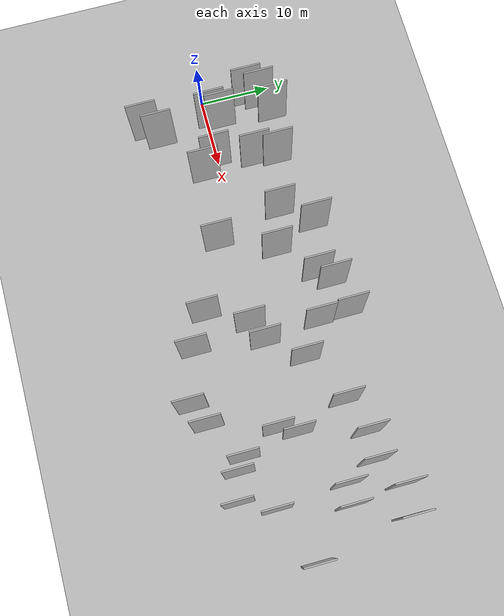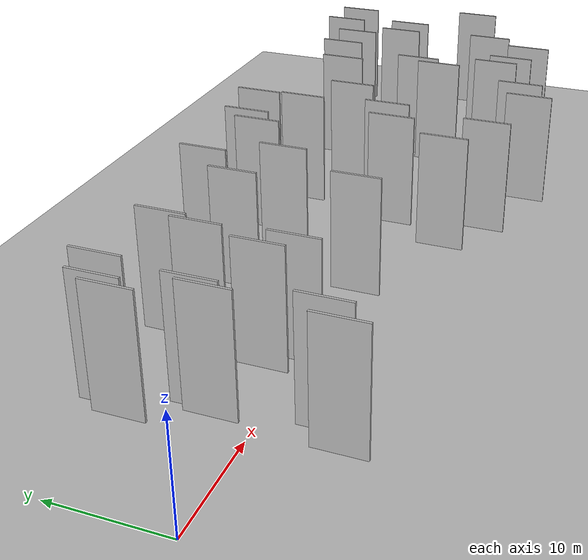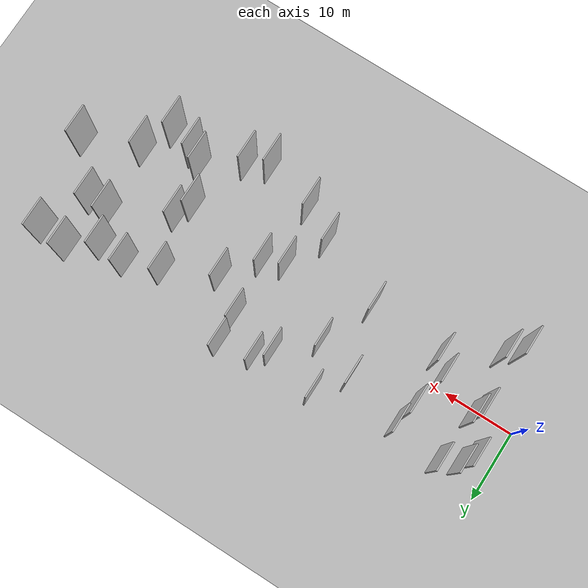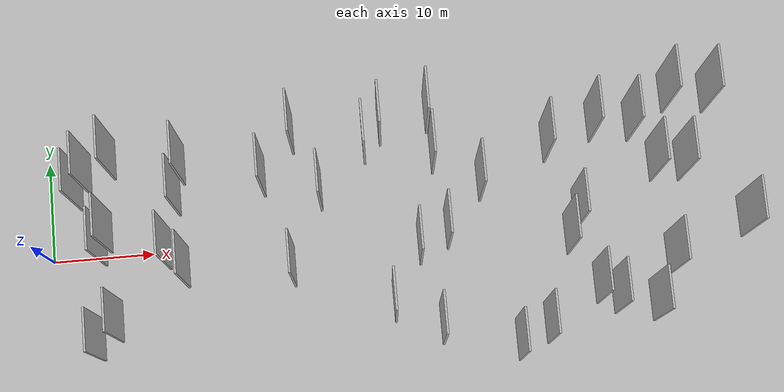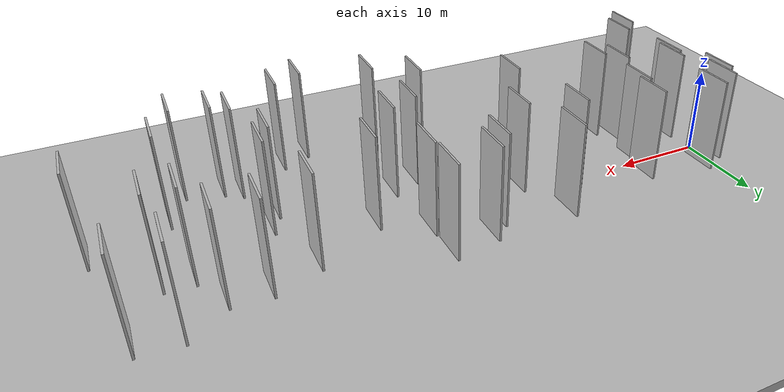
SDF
<?xml version="1.0" encoding="utf-8"?>

<sdf version="1.6">

   <world name="default">

      <gui fullscreen="0">

         <camera name="user_camera">

            <pose>-15 0 4.57585 0 0 0</pose>

            <view_controller>orbit</view_controller>

         </camera>

      </gui>

      <scene>

         <sky>

           <clouds>

             <speed>12</speed>

           </clouds>

         </sky>

         <ambient>0.4 0.4 0.4 1</ambient>

         <background>0.7 0.7 0.7 1</background>

         <shadows>1</shadows>

      </scene>

      <gravity>0 0 -9.8066</gravity>

      <magnetic_field>6e-06 2.3e-05 -4.2e-05</magnetic_field>

      <physics default="0" name="default_physics" type="ode">

         <ode>

            <solver>

               <type>quick</type>

               <iters>10</iters>

               <sor>1.0</sor>

               <use_dynamic_moi_rescaling>0</use_dynamic_moi_rescaling>

            </solver>

            <constraints>

               <cfm>0</cfm>

               <erp>0.2</erp>

               <contact_max_correcting_vel>100</contact_max_correcting_vel>

               <contact_surface_layer>0.001</contact_surface_layer>

            </constraints>

         </ode>

         <max_step_size>0.004</max_step_size>

         <real_time_factor>1</real_time_factor>

         <real_time_update_rate>250</real_time_update_rate>

      </physics>

      <light name="sun" type="directional">

         <cast_shadows>1</cast_shadows>

         <pose>0 0 10 0 0 0</pose>

         <diffuse>0.8 0.8 0.8 1</diffuse>

         <specular>0.2 0.2 0.2 1</specular>

         <attenuation>

            <range>1000</range>

            <constant>0.9</constant>

            <linear>0.01</linear>

            <quadratic>0.001</quadratic>

         </attenuation>

         <direction>-0.5 0.1 -0.9</direction>

      </light>

      <include>

         <name>ground_plane_1</name>

         <uri>model://HANNAS_ground_plane</uri>

         <pose>0 0 0  0 0 0</pose>

      </include>

      <include>

         <name>ground_plane_2</name>

         <uri>model://HANNAS_ground_plane</uri>

         <pose>100 0 0  0 0 0</pose>

      </include>

      <model name="HANNAS_wall_1">

         <static>1</static>

         <pose frame="">61.8722 4.0476 5.0 0.000000 0.000000 1.570796</pose>

         <link name="link">

            <pose frame="">0 0 5.00 0 0 0</pose>

            <collision name="collision">

               <geometry>

                  <box>

                     <size>4.00 0.2 10.00</size>

                  </box>

               </geometry>

               <max_contacts>10</max_contacts>

               <surface>

                  <contact>

                     <ode/>

                  </contact>

                  <bounce/>

                  <friction>

                     <torsional>

                        <ode/>

                     </torsional>

                     <ode/>

                  </friction>

               </surface>

            </collision>

            <visual name="visual">

               <cast_shadows>0</cast_shadows>

               <geometry>

                  <box>

                     <size>4.00 0.2 10.00</size>

                  </box>

               </geometry>

               <material>

                  <script>

                     <uri>model://HANNAS_wall/materials/scripts</uri>

                     <uri>model://HANNAS_wall/materials/textures</uri>

                     <name>vrc/HANNAS_wall</name>

                  </script>

               </material>

            </visual>

            <self_collide>0</self_collide>

            <enable_wind>0</enable_wind>

            <kinematic>0</kinematic>

         </link>

      </model>

      <model name="HANNAS_wall_2">

         <static>1</static>

         <pose frame="">24.0952 -3.1645 5.0 0.000000 0.000000 1.570796</pose>

         <link name="link">

            <pose frame="">0 0 5.00 0 0 0</pose>

            <collision name="collision">

               <geometry>

                  <box>

                     <size>4.00 0.2 10.00</size>

                  </box>

               </geometry>

               <max_contacts>10</max_contacts>

               <surface>

                  <contact>

                     <ode/>

                  </contact>

                  <bounce/>

                  <friction>

                     <torsional>

                        <ode/>

                     </torsional>

                     <ode/>

                  </friction>

               </surface>

            </collision>

            <visual name="visual">

               <cast_shadows>0</cast_shadows>

               <geometry>

                  <box>

                     <size>4.00 0.2 10.00</size>

                  </box>

               </geometry>

               <material>

                  <script>

                     <uri>model://HANNAS_wall/materials/scripts</uri>

                     <uri>model://HANNAS_wall/materials/textures</uri>

                     <name>vrc/HANNAS_wall</name>

                  </script>

               </material>

            </visual>

            <self_collide>0</self_collide>

            <enable_wind>0</enable_wind>

            <kinematic>0</kinematic>

         </link>

      </model>

      <model name="HANNAS_wall_3">

         <static>1</static>

         <pose frame="">33.2724 9.9596 5.0 0.000000 0.000000 1.570796</pose>

         <link name="link">

            <pose frame="">0 0 5.00 0 0 0</pose>

            <collision name="collision">

               <geometry>

                  <box>

                     <size>4.00 0.2 10.00</size>

                  </box>

               </geometry>

               <max_contacts>10</max_contacts>

               <surface>

                  <contact>

                     <ode/>

                  </contact>

                  <bounce/>

                  <friction>

                     <torsional>

                        <ode/>

                     </torsional>

                     <ode/>

                  </friction>

               </surface>

            </collision>

            <visual name="visual">

               <cast_shadows>0</cast_shadows>

               <geometry>

                  <box>

                     <size>4.00 0.2 10.00</size>

                  </box>

               </geometry>

               <material>

                  <script>

                     <uri>model://HANNAS_wall/materials/scripts</uri>

                     <uri>model://HANNAS_wall/materials/textures</uri>

                     <name>vrc/HANNAS_wall</name>

                  </script>

               </material>

            </visual>

            <self_collide>0</self_collide>

            <enable_wind>0</enable_wind>

            <kinematic>0</kinematic>

         </link>

      </model>

      <model name="HANNAS_wall_4">

         <static>1</static>

         <pose frame="">49.0473 6.9587 5.0 0.000000 0.000000 1.570796</pose>

         <link name="link">

            <pose frame="">0 0 5.00 0 0 0</pose>

            <collision name="collision">

               <geometry>

                  <box>

                     <size>4.00 0.2 10.00</size>

                  </box>

               </geometry>

               <max_contacts>10</max_contacts>

               <surface>

                  <contact>

                     <ode/>

                  </contact>

                  <bounce/>

                  <friction>

                     <torsional>

                        <ode/>

                     </torsional>

                     <ode/>

                  </friction>

               </surface>

            </collision>

            <visual name="visual">

               <cast_shadows>0</cast_shadows>

               <geometry>

                  <box>

                     <size>4.00 0.2 10.00</size>

                  </box>

               </geometry>

               <material>

                  <script>

                     <uri>model://HANNAS_wall/materials/scripts</uri>

                     <uri>model://HANNAS_wall/materials/textures</uri>

                     <name>vrc/HANNAS_wall</name>

                  </script>

               </material>

            </visual>

            <self_collide>0</self_collide>

            <enable_wind>0</enable_wind>

            <kinematic>0</kinematic>

         </link>

      </model>

      <model name="HANNAS_wall_5">

         <static>1</static>

         <pose frame="">47.6376 -10.6316 5.0 0.000000 0.000000 1.570796</pose>

         <link name="link">

            <pose frame="">0 0 5.00 0 0 0</pose>

            <collision name="collision">

               <geometry>

                  <box>

                     <size>4.00 0.2 10.00</size>

                  </box>

               </geometry>

               <max_contacts>10</max_contacts>

               <surface>

                  <contact>

                     <ode/>

                  </contact>

                  <bounce/>

                  <friction>

                     <torsional>

                        <ode/>

                     </torsional>

                     <ode/>

                  </friction>

               </surface>

            </collision>

            <visual name="visual">

               <cast_shadows>0</cast_shadows>

               <geometry>

                  <box>

                     <size>4.00 0.2 10.00</size>

                  </box>

               </geometry>

               <material>

                  <script>

                     <uri>model://HANNAS_wall/materials/scripts</uri>

                     <uri>model://HANNAS_wall/materials/textures</uri>

                     <name>vrc/HANNAS_wall</name>

                  </script>

               </material>

            </visual>

            <self_collide>0</self_collide>

            <enable_wind>0</enable_wind>

            <kinematic>0</kinematic>

         </link>

      </model>

      <model name="HANNAS_wall_6">

         <static>1</static>

         <pose frame="">7.3256 -7.0540 5.0 0.000000 0.000000 1.570796</pose>

         <link name="link">

            <pose frame="">0 0 5.00 0 0 0</pose>

            <collision name="collision">

               <geometry>

                  <box>

                     <size>4.00 0.2 10.00</size>

                  </box>

               </geometry>

               <max_contacts>10</max_contacts>

               <surface>

                  <contact>

                     <ode/>

                  </contact>

                  <bounce/>

                  <friction>

                     <torsional>

                        <ode/>

                     </torsional>

                     <ode/>

                  </friction>

               </surface>

            </collision>

            <visual name="visual">

               <cast_shadows>0</cast_shadows>

               <geometry>

                  <box>

                     <size>4.00 0.2 10.00</size>

                  </box>

               </geometry>

               <material>

                  <script>

                     <uri>model://HANNAS_wall/materials/scripts</uri>

                     <uri>model://HANNAS_wall/materials/textures</uri>

                     <name>vrc/HANNAS_wall</name>

                  </script>

               </material>

            </visual>

            <self_collide>0</self_collide>

            <enable_wind>0</enable_wind>

            <kinematic>0</kinematic>

         </link>

      </model>

      <model name="HANNAS_wall_7">

         <static>1</static>

         <pose frame="">37.7008 -9.8740 5.0 0.000000 0.000000 1.570796</pose>

         <link name="link">

            <pose frame="">0 0 5.00 0 0 0</pose>

            <collision name="collision">

               <geometry>

                  <box>

                     <size>4.00 0.2 10.00</size>

                  </box>

               </geometry>

               <max_contacts>10</max_contacts>

               <surface>

                  <contact>

                     <ode/>

                  </contact>

                  <bounce/>

                  <friction>

                     <torsional>

                        <ode/>

                     </torsional>

                     <ode/>

                  </friction>

               </surface>

            </collision>

            <visual name="visual">

               <cast_shadows>0</cast_shadows>

               <geometry>

                  <box>

                     <size>4.00 0.2 10.00</size>

                  </box>

               </geometry>

               <material>

                  <script>

                     <uri>model://HANNAS_wall/materials/scripts</uri>

                     <uri>model://HANNAS_wall/materials/textures</uri>

                     <name>vrc/HANNAS_wall</name>

                  </script>

               </material>

            </visual>

            <self_collide>0</self_collide>

            <enable_wind>0</enable_wind>

            <kinematic>0</kinematic>

         </link>

      </model>

      <model name="HANNAS_wall_8">

         <static>1</static>

         <pose frame="">42.4209 3.6427 5.0 0.000000 0.000000 1.570796</pose>

         <link name="link">

            <pose frame="">0 0 5.00 0 0 0</pose>

            <collision name="collision">

               <geometry>

                  <box>

                     <size>4.00 0.2 10.00</size>

                  </box>

               </geometry>

               <max_contacts>10</max_contacts>

               <surface>

                  <contact>

                     <ode/>

                  </contact>

                  <bounce/>

                  <friction>

                     <torsional>

                        <ode/>

                     </torsional>

                     <ode/>

                  </friction>

               </surface>

            </collision>

            <visual name="visual">

               <cast_shadows>0</cast_shadows>

               <geometry>

                  <box>

                     <size>4.00 0.2 10.00</size>

                  </box>

               </geometry>

               <material>

                  <script>

                     <uri>model://HANNAS_wall/materials/scripts</uri>

                     <uri>model://HANNAS_wall/materials/textures</uri>

                     <name>vrc/HANNAS_wall</name>

                  </script>

               </material>

            </visual>

            <self_collide>0</self_collide>

            <enable_wind>0</enable_wind>

            <kinematic>0</kinematic>

         </link>

      </model>

      <model name="HANNAS_wall_9">

         <static>1</static>

         <pose frame="">27.1511 4.0003 5.0 0.000000 0.000000 1.570796</pose>

         <link name="link">

            <pose frame="">0 0 5.00 0 0 0</pose>

            <collision name="collision">

               <geometry>

                  <box>

                     <size>4.00 0.2 10.00</size>

                  </box>

               </geometry>

               <max_contacts>10</max_contacts>

               <surface>

                  <contact>

                     <ode/>

                  </contact>

                  <bounce/>

                  <friction>

                     <torsional>

                        <ode/>

                     </torsional>

                     <ode/>

                  </friction>

               </surface>

            </collision>

            <visual name="visual">

               <cast_shadows>0</cast_shadows>

               <geometry>

                  <box>

                     <size>4.00 0.2 10.00</size>

                  </box>

               </geometry>

               <material>

                  <script>

                     <uri>model://HANNAS_wall/materials/scripts</uri>

                     <uri>model://HANNAS_wall/materials/textures</uri>

                     <name>vrc/HANNAS_wall</name>

                  </script>

               </material>

            </visual>

            <self_collide>0</self_collide>

            <enable_wind>0</enable_wind>

            <kinematic>0</kinematic>

         </link>

      </model>

      <model name="HANNAS_wall_10">

         <static>1</static>

         <pose frame="">31.6519 8.2826 5.0 0.000000 0.000000 1.570796</pose>

         <link name="link">

            <pose frame="">0 0 5.00 0 0 0</pose>

            <collision name="collision">

               <geometry>

                  <box>

                     <size>4.00 0.2 10.00</size>

                  </box>

               </geometry>

               <max_contacts>10</max_contacts>

               <surface>

                  <contact>

                     <ode/>

                  </contact>

                  <bounce/>

                  <friction>

                     <torsional>

                        <ode/>

                     </torsional>

                     <ode/>

                  </friction>

               </surface>

            </collision>

            <visual name="visual">

               <cast_shadows>0</cast_shadows>

               <geometry>

                  <box>

                     <size>4.00 0.2 10.00</size>

                  </box>

               </geometry>

               <material>

                  <script>

                     <uri>model://HANNAS_wall/materials/scripts</uri>

                     <uri>model://HANNAS_wall/materials/textures</uri>

                     <name>vrc/HANNAS_wall</name>

                  </script>

               </material>

            </visual>

            <self_collide>0</self_collide>

            <enable_wind>0</enable_wind>

            <kinematic>0</kinematic>

         </link>

      </model>

      <model name="HANNAS_wall_11">

         <static>1</static>

         <pose frame="">4.0250 6.0023 5.0 0.000000 0.000000 1.570796</pose>

         <link name="link">

            <pose frame="">0 0 5.00 0 0 0</pose>

            <collision name="collision">

               <geometry>

                  <box>

                     <size>4.00 0.2 10.00</size>

                  </box>

               </geometry>

               <max_contacts>10</max_contacts>

               <surface>

                  <contact>

                     <ode/>

                  </contact>

                  <bounce/>

                  <friction>

                     <torsional>

                        <ode/>

                     </torsional>

                     <ode/>

                  </friction>

               </surface>

            </collision>

            <visual name="visual">

               <cast_shadows>0</cast_shadows>

               <geometry>

                  <box>

                     <size>4.00 0.2 10.00</size>

                  </box>

               </geometry>

               <material>

                  <script>

                     <uri>model://HANNAS_wall/materials/scripts</uri>

                     <uri>model://HANNAS_wall/materials/textures</uri>

                     <name>vrc/HANNAS_wall</name>

                  </script>

               </material>

            </visual>

            <self_collide>0</self_collide>

            <enable_wind>0</enable_wind>

            <kinematic>0</kinematic>

         </link>

      </model>

      <model name="HANNAS_wall_12">

         <static>1</static>

         <pose frame="">57.9385 -9.3177 5.0 0.000000 0.000000 1.570796</pose>

         <link name="link">

            <pose frame="">0 0 5.00 0 0 0</pose>

            <collision name="collision">

               <geometry>

                  <box>

                     <size>4.00 0.2 10.00</size>

                  </box>

               </geometry>

               <max_contacts>10</max_contacts>

               <surface>

                  <contact>

                     <ode/>

                  </contact>

                  <bounce/>

                  <friction>

                     <torsional>

                        <ode/>

                     </torsional>

                     <ode/>

                  </friction>

               </surface>

            </collision>

            <visual name="visual">

               <cast_shadows>0</cast_shadows>

               <geometry>

                  <box>

                     <size>4.00 0.2 10.00</size>

                  </box>

               </geometry>

               <material>

                  <script>

                     <uri>model://HANNAS_wall/materials/scripts</uri>

                     <uri>model://HANNAS_wall/materials/textures</uri>

                     <name>vrc/HANNAS_wall</name>

                  </script>

               </material>

            </visual>

            <self_collide>0</self_collide>

            <enable_wind>0</enable_wind>

            <kinematic>0</kinematic>

         </link>

      </model>

      <model name="HANNAS_wall_13">

         <static>1</static>

         <pose frame="">67.3275 -1.9392 5.0 0.000000 0.000000 1.570796</pose>

         <link name="link">

            <pose frame="">0 0 5.00 0 0 0</pose>

            <collision name="collision">

               <geometry>

                  <box>

                     <size>4.00 0.2 10.00</size>

                  </box>

               </geometry>

               <max_contacts>10</max_contacts>

               <surface>

                  <contact>

                     <ode/>

                  </contact>

                  <bounce/>

                  <friction>

                     <torsional>

                        <ode/>

                     </torsional>

                     <ode/>

                  </friction>

               </surface>

            </collision>

            <visual name="visual">

               <cast_shadows>0</cast_shadows>

               <geometry>

                  <box>

                     <size>4.00 0.2 10.00</size>

                  </box>

               </geometry>

               <material>

                  <script>

                     <uri>model://HANNAS_wall/materials/scripts</uri>

                     <uri>model://HANNAS_wall/materials/textures</uri>

                     <name>vrc/HANNAS_wall</name>

                  </script>

               </material>

            </visual>

            <self_collide>0</self_collide>

            <enable_wind>0</enable_wind>

            <kinematic>0</kinematic>

         </link>

      </model>

      <model name="HANNAS_wall_14">

         <static>1</static>

         <pose frame="">38.9414 -0.7922 5.0 0.000000 0.000000 1.570796</pose>

         <link name="link">

            <pose frame="">0 0 5.00 0 0 0</pose>

            <collision name="collision">

               <geometry>

                  <box>

                     <size>4.00 0.2 10.00</size>

                  </box>

               </geometry>

               <max_contacts>10</max_contacts>

               <surface>

                  <contact>

                     <ode/>

                  </contact>

                  <bounce/>

                  <friction>

                     <torsional>

                        <ode/>

                     </torsional>

                     <ode/>

                  </friction>

               </surface>

            </collision>

            <visual name="visual">

               <cast_shadows>0</cast_shadows>

               <geometry>

                  <box>

                     <size>4.00 0.2 10.00</size>

                  </box>

               </geometry>

               <material>

                  <script>

                     <uri>model://HANNAS_wall/materials/scripts</uri>

                     <uri>model://HANNAS_wall/materials/textures</uri>

                     <name>vrc/HANNAS_wall</name>

                  </script>

               </material>

            </visual>

            <self_collide>0</self_collide>

            <enable_wind>0</enable_wind>

            <kinematic>0</kinematic>

         </link>

      </model>

      <model name="HANNAS_wall_15">

         <static>1</static>

         <pose frame="">21.7613 5.8761 5.0 0.000000 0.000000 1.570796</pose>

         <link name="link">

            <pose frame="">0 0 5.00 0 0 0</pose>

            <collision name="collision">

               <geometry>

                  <box>

                     <size>4.00 0.2 10.00</size>

                  </box>

               </geometry>

               <max_contacts>10</max_contacts>

               <surface>

                  <contact>

                     <ode/>

                  </contact>

                  <bounce/>

                  <friction>

                     <torsional>

                        <ode/>

                     </torsional>

                     <ode/>

                  </friction>

               </surface>

            </collision>

            <visual name="visual">

               <cast_shadows>0</cast_shadows>

               <geometry>

                  <box>

                     <size>4.00 0.2 10.00</size>

                  </box>

               </geometry>

               <material>

                  <script>

                     <uri>model://HANNAS_wall/materials/scripts</uri>

                     <uri>model://HANNAS_wall/materials/textures</uri>

                     <name>vrc/HANNAS_wall</name>

                  </script>

               </material>

            </visual>

            <self_collide>0</self_collide>

            <enable_wind>0</enable_wind>

            <kinematic>0</kinematic>

         </link>

      </model>

      <model name="HANNAS_wall_16">

         <static>1</static>

         <pose frame="">6.1006 0.4176 5.0 0.000000 0.000000 1.570796</pose>

         <link name="link">

            <pose frame="">0 0 5.00 0 0 0</pose>

            <collision name="collision">

               <geometry>

                  <box>

                     <size>4.00 0.2 10.00</size>

                  </box>

               </geometry>

               <max_contacts>10</max_contacts>

               <surface>

                  <contact>

                     <ode/>

                  </contact>

                  <bounce/>

                  <friction>

                     <torsional>

                        <ode/>

                     </torsional>

                     <ode/>

                  </friction>

               </surface>

            </collision>

            <visual name="visual">

               <cast_shadows>0</cast_shadows>

               <geometry>

                  <box>

                     <size>4.00 0.2 10.00</size>

                  </box>

               </geometry>

               <material>

                  <script>

                     <uri>model://HANNAS_wall/materials/scripts</uri>

                     <uri>model://HANNAS_wall/materials/textures</uri>

                     <name>vrc/HANNAS_wall</name>

                  </script>

               </material>

            </visual>

            <self_collide>0</self_collide>

            <enable_wind>0</enable_wind>

            <kinematic>0</kinematic>

         </link>

      </model>

      <model name="HANNAS_wall_17">

         <static>1</static>

         <pose frame="">14.0295 7.7053 5.0 0.000000 0.000000 1.570796</pose>

         <link name="link">

            <pose frame="">0 0 5.00 0 0 0</pose>

            <collision name="collision">

               <geometry>

                  <box>

                     <size>4.00 0.2 10.00</size>

                  </box>

               </geometry>

               <max_contacts>10</max_contacts>

               <surface>

                  <contact>

                     <ode/>

                  </contact>

                  <bounce/>

                  <friction>

                     <torsional>

                        <ode/>

                     </torsional>

                     <ode/>

                  </friction>

               </surface>

            </collision>

            <visual name="visual">

               <cast_shadows>0</cast_shadows>

               <geometry>

                  <box>

                     <size>4.00 0.2 10.00</size>

                  </box>

               </geometry>

               <material>

                  <script>

                     <uri>model://HANNAS_wall/materials/scripts</uri>

                     <uri>model://HANNAS_wall/materials/textures</uri>

                     <name>vrc/HANNAS_wall</name>

                  </script>

               </material>

            </visual>

            <self_collide>0</self_collide>

            <enable_wind>0</enable_wind>

            <kinematic>0</kinematic>

         </link>

      </model>

      <model name="HANNAS_wall_18">

         <static>1</static>

         <pose frame="">54.3517 -8.3169 5.0 0.000000 0.000000 1.570796</pose>

         <link name="link">

            <pose frame="">0 0 5.00 0 0 0</pose>

            <collision name="collision">

               <geometry>

                  <box>

                     <size>4.00 0.2 10.00</size>

                  </box>

               </geometry>

               <max_contacts>10</max_contacts>

               <surface>

                  <contact>

                     <ode/>

                  </contact>

                  <bounce/>

                  <friction>

                     <torsional>

                        <ode/>

                     </torsional>

                     <ode/>

                  </friction>

               </surface>

            </collision>

            <visual name="visual">

               <cast_shadows>0</cast_shadows>

               <geometry>

                  <box>

                     <size>4.00 0.2 10.00</size>

                  </box>

               </geometry>

               <material>

                  <script>

                     <uri>model://HANNAS_wall/materials/scripts</uri>

                     <uri>model://HANNAS_wall/materials/textures</uri>

                     <name>vrc/HANNAS_wall</name>

                  </script>

               </material>

            </visual>

            <self_collide>0</self_collide>

            <enable_wind>0</enable_wind>

            <kinematic>0</kinematic>

         </link>

      </model>

      <model name="HANNAS_wall_19">

         <static>1</static>

         <pose frame="">59.9371 -4.9966 5.0 0.000000 0.000000 1.570796</pose>

         <link name="link">

            <pose frame="">0 0 5.00 0 0 0</pose>

            <collision name="collision">

               <geometry>

                  <box>

                     <size>4.00 0.2 10.00</size>

                  </box>

               </geometry>

               <max_contacts>10</max_contacts>

               <surface>

                  <contact>

                     <ode/>

                  </contact>

                  <bounce/>

                  <friction>

                     <torsional>

                        <ode/>

                     </torsional>

                     <ode/>

                  </friction>

               </surface>

            </collision>

            <visual name="visual">

               <cast_shadows>0</cast_shadows>

               <geometry>

                  <box>

                     <size>4.00 0.2 10.00</size>

                  </box>

               </geometry>

               <material>

                  <script>

                     <uri>model://HANNAS_wall/materials/scripts</uri>

                     <uri>model://HANNAS_wall/materials/textures</uri>

                     <name>vrc/HANNAS_wall</name>

                  </script>

               </material>

            </visual>

            <self_collide>0</self_collide>

            <enable_wind>0</enable_wind>

            <kinematic>0</kinematic>

         </link>

      </model>

      <model name="HANNAS_wall_20">

         <static>1</static>

         <pose frame="">51.4424 0.0903 5.0 0.000000 0.000000 1.570796</pose>

         <link name="link">

            <pose frame="">0 0 5.00 0 0 0</pose>

            <collision name="collision">

               <geometry>

                  <box>

                     <size>4.00 0.2 10.00</size>

                  </box>

               </geometry>

               <max_contacts>10</max_contacts>

               <surface>

                  <contact>

                     <ode/>

                  </contact>

                  <bounce/>

                  <friction>

                     <torsional>

                        <ode/>

                     </torsional>

                     <ode/>

                  </friction>

               </surface>

            </collision>

            <visual name="visual">

               <cast_shadows>0</cast_shadows>

               <geometry>

                  <box>

                     <size>4.00 0.2 10.00</size>

                  </box>

               </geometry>

               <material>

                  <script>

                     <uri>model://HANNAS_wall/materials/scripts</uri>

                     <uri>model://HANNAS_wall/materials/textures</uri>

                     <name>vrc/HANNAS_wall</name>

                  </script>

               </material>

            </visual>

            <self_collide>0</self_collide>

            <enable_wind>0</enable_wind>

            <kinematic>0</kinematic>

         </link>

      </model>

      <model name="HANNAS_wall_21">

         <static>1</static>

         <pose frame="">52.7272 -7.2309 5.0 0.000000 0.000000 1.570796</pose>

         <link name="link">

            <pose frame="">0 0 5.00 0 0 0</pose>

            <collision name="collision">

               <geometry>

                  <box>

                     <size>4.00 0.2 10.00</size>

                  </box>

               </geometry>

               <max_contacts>10</max_contacts>

               <surface>

                  <contact>

                     <ode/>

                  </contact>

                  <bounce/>

                  <friction>

                     <torsional>

                        <ode/>

                     </torsional>

                     <ode/>

                  </friction>

               </surface>

            </collision>

            <visual name="visual">

               <cast_shadows>0</cast_shadows>

               <geometry>

                  <box>

                     <size>4.00 0.2 10.00</size>

                  </box>

               </geometry>

               <material>

                  <script>

                     <uri>model://HANNAS_wall/materials/scripts</uri>

                     <uri>model://HANNAS_wall/materials/textures</uri>

                     <name>vrc/HANNAS_wall</name>

                  </script>

               </material>

            </visual>

            <self_collide>0</self_collide>

            <enable_wind>0</enable_wind>

            <kinematic>0</kinematic>

         </link>

      </model>

      <model name="HANNAS_wall_22">

         <static>1</static>

         <pose frame="">57.3311 8.3574 5.0 0.000000 0.000000 1.570796</pose>

         <link name="link">

            <pose frame="">0 0 5.00 0 0 0</pose>

            <collision name="collision">

               <geometry>

                  <box>

                     <size>4.00 0.2 10.00</size>

                  </box>

               </geometry>

               <max_contacts>10</max_contacts>

               <surface>

                  <contact>

                     <ode/>

                  </contact>

                  <bounce/>

                  <friction>

                     <torsional>

                        <ode/>

                     </torsional>

                     <ode/>

                  </friction>

               </surface>

            </collision>

            <visual name="visual">

               <cast_shadows>0</cast_shadows>

               <geometry>

                  <box>

                     <size>4.00 0.2 10.00</size>

                  </box>

               </geometry>

               <material>

                  <script>

                     <uri>model://HANNAS_wall/materials/scripts</uri>

                     <uri>model://HANNAS_wall/materials/textures</uri>

                     <name>vrc/HANNAS_wall</name>

                  </script>

               </material>

            </visual>

            <self_collide>0</self_collide>

            <enable_wind>0</enable_wind>

            <kinematic>0</kinematic>

         </link>

      </model>

      <model name="HANNAS_wall_23">

         <static>1</static>

         <pose frame="">13.4441 4.6851 5.0 0.000000 0.000000 1.570796</pose>

         <link name="link">

            <pose frame="">0 0 5.00 0 0 0</pose>

            <collision name="collision">

               <geometry>

                  <box>

                     <size>4.00 0.2 10.00</size>

                  </box>

               </geometry>

               <max_contacts>10</max_contacts>

               <surface>

                  <contact>

                     <ode/>

                  </contact>

                  <bounce/>

                  <friction>

                     <torsional>

                        <ode/>

                     </torsional>

                     <ode/>

                  </friction>

               </surface>

            </collision>

            <visual name="visual">

               <cast_shadows>0</cast_shadows>

               <geometry>

                  <box>

                     <size>4.00 0.2 10.00</size>

                  </box>

               </geometry>

               <material>

                  <script>

                     <uri>model://HANNAS_wall/materials/scripts</uri>

                     <uri>model://HANNAS_wall/materials/textures</uri>

                     <name>vrc/HANNAS_wall</name>

                  </script>

               </material>

            </visual>

            <self_collide>0</self_collide>

            <enable_wind>0</enable_wind>

            <kinematic>0</kinematic>

         </link>

      </model>

      <model name="HANNAS_wall_24">

         <static>1</static>

         <pose frame="">44.7818 -11.9892 5.0 0.000000 0.000000 1.570796</pose>

         <link name="link">

            <pose frame="">0 0 5.00 0 0 0</pose>

            <collision name="collision">

               <geometry>

                  <box>

                     <size>4.00 0.2 10.00</size>

                  </box>

               </geometry>

               <max_contacts>10</max_contacts>

               <surface>

                  <contact>

                     <ode/>

                  </contact>

                  <bounce/>

                  <friction>

                     <torsional>

                        <ode/>

                     </torsional>

                     <ode/>

                  </friction>

               </surface>

            </collision>

            <visual name="visual">

               <cast_shadows>0</cast_shadows>

               <geometry>

                  <box>

                     <size>4.00 0.2 10.00</size>

                  </box>

               </geometry>

               <material>

                  <script>

                     <uri>model://HANNAS_wall/materials/scripts</uri>

                     <uri>model://HANNAS_wall/materials/textures</uri>

                     <name>vrc/HANNAS_wall</name>

                  </script>

               </material>

            </visual>

            <self_collide>0</self_collide>

            <enable_wind>0</enable_wind>

            <kinematic>0</kinematic>

         </link>

      </model>

      <model name="HANNAS_wall_25">

         <static>1</static>

         <pose frame="">36.1950 -2.0576 5.0 0.000000 0.000000 1.570796</pose>

         <link name="link">

            <pose frame="">0 0 5.00 0 0 0</pose>

            <collision name="collision">

               <geometry>

                  <box>

                     <size>4.00 0.2 10.00</size>

                  </box>

               </geometry>

               <max_contacts>10</max_contacts>

               <surface>

                  <contact>

                     <ode/>

                  </contact>

                  <bounce/>

                  <friction>

                     <torsional>

                        <ode/>

                     </torsional>

                     <ode/>

                  </friction>

               </surface>

            </collision>

            <visual name="visual">

               <cast_shadows>0</cast_shadows>

               <geometry>

                  <box>

                     <size>4.00 0.2 10.00</size>

                  </box>

               </geometry>

               <material>

                  <script>

                     <uri>model://HANNAS_wall/materials/scripts</uri>

                     <uri>model://HANNAS_wall/materials/textures</uri>

                     <name>vrc/HANNAS_wall</name>

                  </script>

               </material>

            </visual>

            <self_collide>0</self_collide>

            <enable_wind>0</enable_wind>

            <kinematic>0</kinematic>

         </link>

      </model>

      <model name="HANNAS_wall_26">

         <static>1</static>

         <pose frame="">6.6715 1.6446 5.0 0.000000 0.000000 1.570796</pose>

         <link name="link">

            <pose frame="">0 0 5.00 0 0 0</pose>

            <collision name="collision">

               <geometry>

                  <box>

                     <size>4.00 0.2 10.00</size>

                  </box>

               </geometry>

               <max_contacts>10</max_contacts>

               <surface>

                  <contact>

                     <ode/>

                  </contact>

                  <bounce/>

                  <friction>

                     <torsional>

                        <ode/>

                     </torsional>

                     <ode/>

                  </friction>

               </surface>

            </collision>

            <visual name="visual">

               <cast_shadows>0</cast_shadows>

               <geometry>

                  <box>

                     <size>4.00 0.2 10.00</size>

                  </box>

               </geometry>

               <material>

                  <script>

                     <uri>model://HANNAS_wall/materials/scripts</uri>

                     <uri>model://HANNAS_wall/materials/textures</uri>

                     <name>vrc/HANNAS_wall</name>

                  </script>

               </material>

            </visual>

            <self_collide>0</self_collide>

            <enable_wind>0</enable_wind>

            <kinematic>0</kinematic>

         </link>

      </model>

      <model name="HANNAS_wall_27">

         <static>1</static>

         <pose frame="">61.0809 10.9230 5.0 0.000000 0.000000 1.570796</pose>

         <link name="link">

            <pose frame="">0 0 5.00 0 0 0</pose>

            <collision name="collision">

               <geometry>

                  <box>

                     <size>4.00 0.2 10.00</size>

                  </box>

               </geometry>

               <max_contacts>10</max_contacts>

               <surface>

                  <contact>

                     <ode/>

                  </contact>

                  <bounce/>

                  <friction>

                     <torsional>

                        <ode/>

                     </torsional>

                     <ode/>

                  </friction>

               </surface>

            </collision>

            <visual name="visual">

               <cast_shadows>0</cast_shadows>

               <geometry>

                  <box>

                     <size>4.00 0.2 10.00</size>

                  </box>

               </geometry>

               <material>

                  <script>

                     <uri>model://HANNAS_wall/materials/scripts</uri>

                     <uri>model://HANNAS_wall/materials/textures</uri>

                     <name>vrc/HANNAS_wall</name>

                  </script>

               </material>

            </visual>

            <self_collide>0</self_collide>

            <enable_wind>0</enable_wind>

            <kinematic>0</kinematic>

         </link>

      </model>

      <model name="HANNAS_wall_28">

         <static>1</static>

         <pose frame="">38.1163 6.7494 5.0 0.000000 0.000000 1.570796</pose>

         <link name="link">

            <pose frame="">0 0 5.00 0 0 0</pose>

            <collision name="collision">

               <geometry>

                  <box>

                     <size>4.00 0.2 10.00</size>

                  </box>

               </geometry>

               <max_contacts>10</max_contacts>

               <surface>

                  <contact>

                     <ode/>

                  </contact>

                  <bounce/>

                  <friction>

                     <torsional>

                        <ode/>

                     </torsional>

                     <ode/>

                  </friction>

               </surface>

            </collision>

            <visual name="visual">

               <cast_shadows>0</cast_shadows>

               <geometry>

                  <box>

                     <size>4.00 0.2 10.00</size>

                  </box>

               </geometry>

               <material>

                  <script>

                     <uri>model://HANNAS_wall/materials/scripts</uri>

                     <uri>model://HANNAS_wall/materials/textures</uri>

                     <name>vrc/HANNAS_wall</name>

                  </script>

               </material>

            </visual>

            <self_collide>0</self_collide>

            <enable_wind>0</enable_wind>

            <kinematic>0</kinematic>

         </link>

      </model>

      <model name="HANNAS_wall_29">

         <static>1</static>

         <pose frame="">5.5426 -8.6932 5.0 0.000000 0.000000 1.570796</pose>

         <link name="link">

            <pose frame="">0 0 5.00 0 0 0</pose>

            <collision name="collision">

               <geometry>

                  <box>

                     <size>4.00 0.2 10.00</size>

                  </box>

               </geometry>

               <max_contacts>10</max_contacts>

               <surface>

                  <contact>

                     <ode/>

                  </contact>

                  <bounce/>

                  <friction>

                     <torsional>

                        <ode/>

                     </torsional>

                     <ode/>

                  </friction>

               </surface>

            </collision>

            <visual name="visual">

               <cast_shadows>0</cast_shadows>

               <geometry>

                  <box>

                     <size>4.00 0.2 10.00</size>

                  </box>

               </geometry>

               <material>

                  <script>

                     <uri>model://HANNAS_wall/materials/scripts</uri>

                     <uri>model://HANNAS_wall/materials/textures</uri>

                     <name>vrc/HANNAS_wall</name>

                  </script>

               </material>

            </visual>

            <self_collide>0</self_collide>

            <enable_wind>0</enable_wind>

            <kinematic>0</kinematic>

         </link>

      </model>

      <model name="HANNAS_wall_30">

         <static>1</static>

         <pose frame="">4.9219 7.5120 5.0 0.000000 0.000000 1.570796</pose>

         <link name="link">

            <pose frame="">0 0 5.00 0 0 0</pose>

            <collision name="collision">

               <geometry>

                  <box>

                     <size>4.00 0.2 10.00</size>

                  </box>

               </geometry>

               <max_contacts>10</max_contacts>

               <surface>

                  <contact>

                     <ode/>

                  </contact>

                  <bounce/>

                  <friction>

                     <torsional>

                        <ode/>

                     </torsional>

                     <ode/>

                  </friction>

               </surface>

            </collision>

            <visual name="visual">

               <cast_shadows>0</cast_shadows>

               <geometry>

                  <box>

                     <size>4.00 0.2 10.00</size>

                  </box>

               </geometry>

               <material>

                  <script>

                     <uri>model://HANNAS_wall/materials/scripts</uri>

                     <uri>model://HANNAS_wall/materials/textures</uri>

                     <name>vrc/HANNAS_wall</name>

                  </script>

               </material>

            </visual>

            <self_collide>0</self_collide>

            <enable_wind>0</enable_wind>

            <kinematic>0</kinematic>

         </link>

      </model>

      <model name="HANNAS_wall_31">

         <static>1</static>

         <pose frame="">24.7826 9.8394 5.0 0.000000 0.000000 1.570796</pose>

         <link name="link">

            <pose frame="">0 0 5.00 0 0 0</pose>

            <collision name="collision">

               <geometry>

                  <box>

                     <size>4.00 0.2 10.00</size>

                  </box>

               </geometry>

               <max_contacts>10</max_contacts>

               <surface>

                  <contact>

                     <ode/>

                  </contact>

                  <bounce/>

                  <friction>

                     <torsional>

                        <ode/>

                     </torsional>

                     <ode/>

                  </friction>

               </surface>

            </collision>

            <visual name="visual">

               <cast_shadows>0</cast_shadows>

               <geometry>

                  <box>

                     <size>4.00 0.2 10.00</size>

                  </box>

               </geometry>

               <material>

                  <script>

                     <uri>model://HANNAS_wall/materials/scripts</uri>

                     <uri>model://HANNAS_wall/materials/textures</uri>

                     <name>vrc/HANNAS_wall</name>

                  </script>

               </material>

            </visual>

            <self_collide>0</self_collide>

            <enable_wind>0</enable_wind>

            <kinematic>0</kinematic>

         </link>

      </model>

      <model name="HANNAS_wall_32">

         <static>1</static>

         <pose frame="">64.9520 10.6086 5.0 0.000000 0.000000 1.570796</pose>

         <link name="link">

            <pose frame="">0 0 5.00 0 0 0</pose>

            <collision name="collision">

               <geometry>

                  <box>

                     <size>4.00 0.2 10.00</size>

                  </box>

               </geometry>

               <max_contacts>10</max_contacts>

               <surface>

                  <contact>

                     <ode/>

                  </contact>

                  <bounce/>

                  <friction>

                     <torsional>

                        <ode/>

                     </torsional>

                     <ode/>

                  </friction>

               </surface>

            </collision>

            <visual name="visual">

               <cast_shadows>0</cast_shadows>

               <geometry>

                  <box>

                     <size>4.00 0.2 10.00</size>

                  </box>

               </geometry>

               <material>

                  <script>

                     <uri>model://HANNAS_wall/materials/scripts</uri>

                     <uri>model://HANNAS_wall/materials/textures</uri>

                     <name>vrc/HANNAS_wall</name>

                  </script>

               </material>

            </visual>

            <self_collide>0</self_collide>

            <enable_wind>0</enable_wind>

            <kinematic>0</kinematic>

         </link>

      </model>

      <model name="HANNAS_wall_33">

         <static>1</static>

         <pose frame="">33.3776 -7.3696 5.0 0.000000 0.000000 1.570796</pose>

         <link name="link">

            <pose frame="">0 0 5.00 0 0 0</pose>

            <collision name="collision">

               <geometry>

                  <box>

                     <size>4.00 0.2 10.00</size>

                  </box>

               </geometry>

               <max_contacts>10</max_contacts>

               <surface>

                  <contact>

                     <ode/>

                  </contact>

                  <bounce/>

                  <friction>

                     <torsional>

                        <ode/>

                     </torsional>

                     <ode/>

                  </friction>

               </surface>

            </collision>

            <visual name="visual">

               <cast_shadows>0</cast_shadows>

               <geometry>

                  <box>

                     <size>4.00 0.2 10.00</size>

                  </box>

               </geometry>

               <material>

                  <script>

                     <uri>model://HANNAS_wall/materials/scripts</uri>

                     <uri>model://HANNAS_wall/materials/textures</uri>

                     <name>vrc/HANNAS_wall</name>

                  </script>

               </material>

            </visual>

            <self_collide>0</self_collide>

            <enable_wind>0</enable_wind>

            <kinematic>0</kinematic>

         </link>

      </model>

      <model name="HANNAS_wall_34">

         <static>1</static>

         <pose frame="">12.2626 -0.4662 5.0 0.000000 0.000000 1.570796</pose>

         <link name="link">

            <pose frame="">0 0 5.00 0 0 0</pose>

            <collision name="collision">

               <geometry>

                  <box>

                     <size>4.00 0.2 10.00</size>

                  </box>

               </geometry>

               <max_contacts>10</max_contacts>

               <surface>

                  <contact>

                     <ode/>

                  </contact>

                  <bounce/>

                  <friction>

                     <torsional>

                        <ode/>

                     </torsional>

                     <ode/>

                  </friction>

               </surface>

            </collision>

            <visual name="visual">

               <cast_shadows>0</cast_shadows>

               <geometry>

                  <box>

                     <size>4.00 0.2 10.00</size>

                  </box>

               </geometry>

               <material>

                  <script>

                     <uri>model://HANNAS_wall/materials/scripts</uri>

                     <uri>model://HANNAS_wall/materials/textures</uri>

                     <name>vrc/HANNAS_wall</name>

                  </script>

               </material>

            </visual>

            <self_collide>0</self_collide>

            <enable_wind>0</enable_wind>

            <kinematic>0</kinematic>

         </link>

      </model>

      <model name="HANNAS_wall_35">

         <static>1</static>

         <pose frame="">7.3493 8.7970 5.0 0.000000 0.000000 1.570796</pose>

         <link name="link">

            <pose frame="">0 0 5.00 0 0 0</pose>

            <collision name="collision">

               <geometry>

                  <box>

                     <size>4.00 0.2 10.00</size>

                  </box>

               </geometry>

               <max_contacts>10</max_contacts>

               <surface>

                  <contact>

                     <ode/>

                  </contact>

                  <bounce/>

                  <friction>

                     <torsional>

                        <ode/>

                     </torsional>

                     <ode/>

                  </friction>

               </surface>

            </collision>

            <visual name="visual">

               <cast_shadows>0</cast_shadows>

               <geometry>

                  <box>

                     <size>4.00 0.2 10.00</size>

                  </box>

               </geometry>

               <material>

                  <script>

                     <uri>model://HANNAS_wall/materials/scripts</uri>

                     <uri>model://HANNAS_wall/materials/textures</uri>

                     <name>vrc/HANNAS_wall</name>

                  </script>

               </material>

            </visual>

            <self_collide>0</self_collide>

            <enable_wind>0</enable_wind>

            <kinematic>0</kinematic>

         </link>

      </model>

      <model name="HANNAS_wall_36">

         <static>1</static>

         <pose frame="">13.9228 -2.3723 5.0 0.000000 0.000000 1.570796</pose>

         <link name="link">

            <pose frame="">0 0 5.00 0 0 0</pose>

            <collision name="collision">

               <geometry>

                  <box>

                     <size>4.00 0.2 10.00</size>

                  </box>

               </geometry>

               <max_contacts>10</max_contacts>

               <surface>

                  <contact>

                     <ode/>

                  </contact>

                  <bounce/>

                  <friction>

                     <torsional>

                        <ode/>

                     </torsional>

                     <ode/>

                  </friction>

               </surface>

            </collision>

            <visual name="visual">

               <cast_shadows>0</cast_shadows>

               <geometry>

                  <box>

                     <size>4.00 0.2 10.00</size>

                  </box>

               </geometry>

               <material>

                  <script>

                     <uri>model://HANNAS_wall/materials/scripts</uri>

                     <uri>model://HANNAS_wall/materials/textures</uri>

                     <name>vrc/HANNAS_wall</name>

                  </script>

               </material>

            </visual>

            <self_collide>0</self_collide>

            <enable_wind>0</enable_wind>

            <kinematic>0</kinematic>

         </link>

      </model>

      <model name="HANNAS_wall_37">

         <static>1</static>

         <pose frame="">50.3925 -2.2421 5.0 0.000000 0.000000 1.570796</pose>

         <link name="link">

            <pose frame="">0 0 5.00 0 0 0</pose>

            <collision name="collision">

               <geometry>

                  <box>

                     <size>4.00 0.2 10.00</size>

                  </box>

               </geometry>

               <max_contacts>10</max_contacts>

               <surface>

                  <contact>

                     <ode/>

                  </contact>

                  <bounce/>

                  <friction>

                     <torsional>

                        <ode/>

                     </torsional>

                     <ode/>

                  </friction>

               </surface>

            </collision>

            <visual name="visual">

               <cast_shadows>0</cast_shadows>

               <geometry>

                  <box>

                     <size>4.00 0.2 10.00</size>

                  </box>

               </geometry>

               <material>

                  <script>

                     <uri>model://HANNAS_wall/materials/scripts</uri>

                     <uri>model://HANNAS_wall/materials/textures</uri>

                     <name>vrc/HANNAS_wall</name>

                  </script>

               </material>

            </visual>

            <self_collide>0</self_collide>

            <enable_wind>0</enable_wind>

            <kinematic>0</kinematic>

         </link>

      </model>

      <model name="HANNAS_wall_38">

         <static>1</static>

         <pose frame="">53.6442 8.6141 5.0 0.000000 0.000000 1.570796</pose>

         <link name="link">

            <pose frame="">0 0 5.00 0 0 0</pose>

            <collision name="collision">

               <geometry>

                  <box>

                     <size>4.00 0.2 10.00</size>

                  </box>

               </geometry>

               <max_contacts>10</max_contacts>

               <surface>

                  <contact>

                     <ode/>

                  </contact>

                  <bounce/>

                  <friction>

                     <torsional>

                        <ode/>

                     </torsional>

                     <ode/>

                  </friction>

               </surface>

            </collision>

            <visual name="visual">

               <cast_shadows>0</cast_shadows>

               <geometry>

                  <box>

                     <size>4.00 0.2 10.00</size>

                  </box>

               </geometry>

               <material>

                  <script>

                     <uri>model://HANNAS_wall/materials/scripts</uri>

                     <uri>model://HANNAS_wall/materials/textures</uri>

                     <name>vrc/HANNAS_wall</name>

                  </script>

               </material>

            </visual>

            <self_collide>0</self_collide>

            <enable_wind>0</enable_wind>

            <kinematic>0</kinematic>

         </link>

      </model>

      <model name="HANNAS_wall_39">

         <static>1</static>

         <pose frame="">59.1828 4.2302 5.0 0.000000 0.000000 1.570796</pose>

         <link name="link">

            <pose frame="">0 0 5.00 0 0 0</pose>

            <collision name="collision">

               <geometry>

                  <box>

                     <size>4.00 0.2 10.00</size>

                  </box>

               </geometry>

               <max_contacts>10</max_contacts>

               <surface>

                  <contact>

                     <ode/>

                  </contact>

                  <bounce/>

                  <friction>

                     <torsional>

                        <ode/>

                     </torsional>

                     <ode/>

                  </friction>

               </surface>

            </collision>

            <visual name="visual">

               <cast_shadows>0</cast_shadows>

               <geometry>

                  <box>

                     <size>4.00 0.2 10.00</size>

                  </box>

               </geometry>

               <material>

                  <script>

                     <uri>model://HANNAS_wall/materials/scripts</uri>

                     <uri>model://HANNAS_wall/materials/textures</uri>

                     <name>vrc/HANNAS_wall</name>

                  </script>

               </material>

            </visual>

            <self_collide>0</self_collide>

            <enable_wind>0</enable_wind>

            <kinematic>0</kinematic>

         </link>

      </model>

      <model name="HANNAS_wall_40">

         <static>1</static>

         <pose frame="">37.8838 10.8541 5.0 0.000000 0.000000 1.570796</pose>

         <link name="link">

            <pose frame="">0 0 5.00 0 0 0</pose>

            <collision name="collision">

               <geometry>

                  <box>

                     <size>4.00 0.2 10.00</size>

                  </box>

               </geometry>

               <max_contacts>10</max_contacts>

               <surface>

                  <contact>

                     <ode/>

                  </contact>

                  <bounce/>

                  <friction>

                     <torsional>

                        <ode/>

                     </torsional>

                     <ode/>

                  </friction>

               </surface>

            </collision>

            <visual name="visual">

               <cast_shadows>0</cast_shadows>

               <geometry>

                  <box>

                     <size>4.00 0.2 10.00</size>

                  </box>

               </geometry>

               <material>

                  <script>

                     <uri>model://HANNAS_wall/materials/scripts</uri>

                     <uri>model://HANNAS_wall/materials/textures</uri>

                     <name>vrc/HANNAS_wall</name>

                  </script>

               </material>

            </visual>

            <self_collide>0</self_collide>

            <enable_wind>0</enable_wind>

            <kinematic>0</kinematic>

         </link>

      </model>

   </world>

</sdf>
